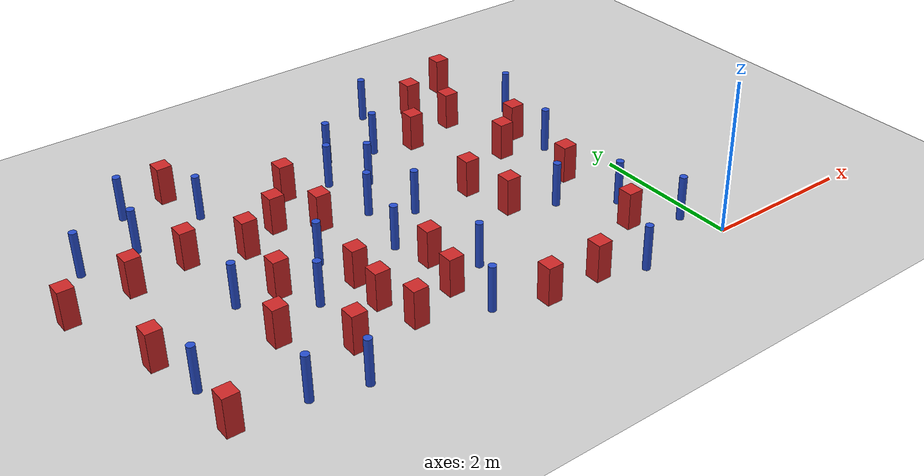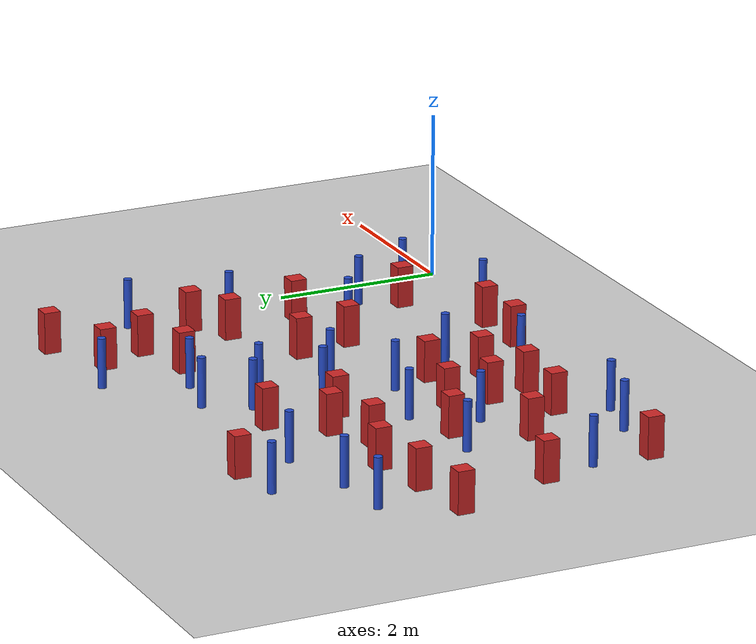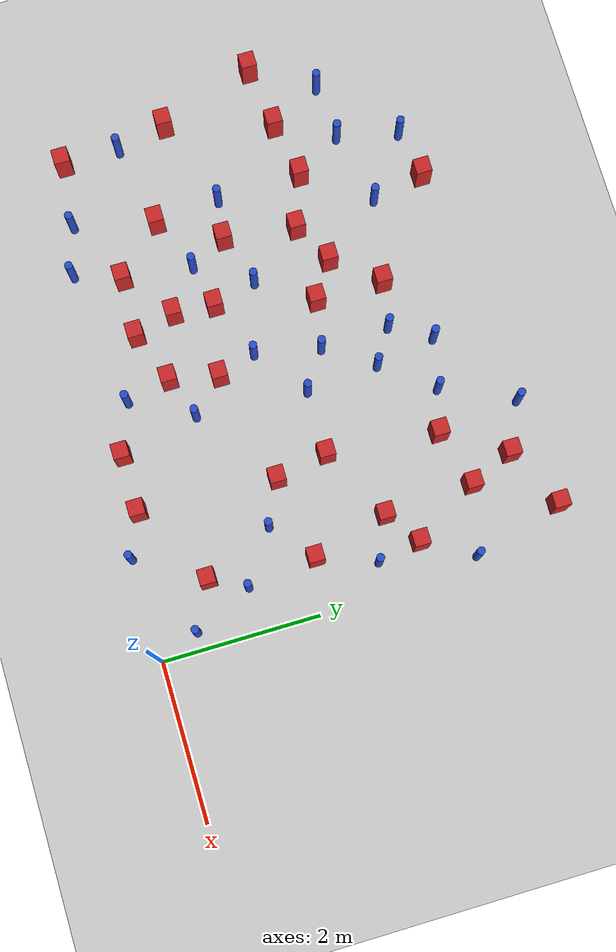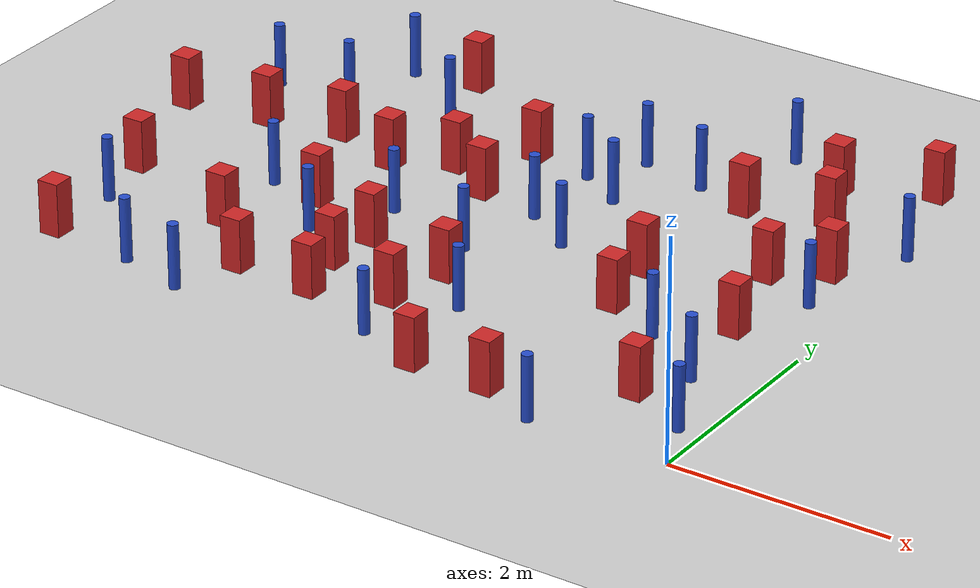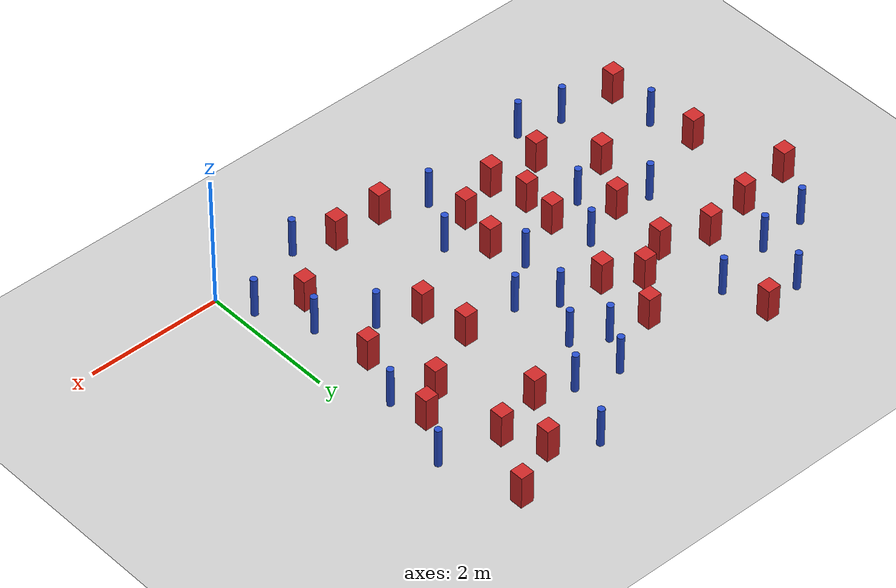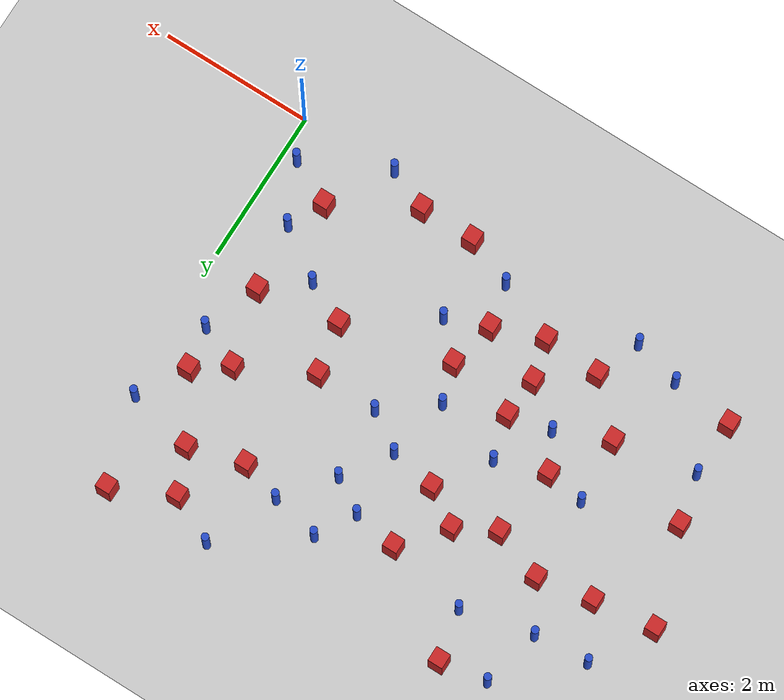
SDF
<sdf version="1.6">
 <world name="default">
  <model name="ground_plane">
   <static>1</static>
   <link name="link">
    <collision name="collision">
     <geometry><plane><normal>0 0 1</normal><size>100 100</size></plane></geometry>
     <surface><friction><ode><mu>100</mu><mu2>50</mu2></ode></friction></surface>
    </collision>
    <visual name="visual">
     <cast_shadows>0</cast_shadows>
     <geometry><plane><normal>0 0 1</normal><size>100 100</size></plane></geometry>
     <material>
      <ambient>1.0 1.0 1.0 1.0</ambient>
      <diffuse>0.8 0.8 0.8 1.0</diffuse>
      <specular>0.01 0.01 0.01 1.000000</specular>
     </material>
    </visual>
   </link>
  </model>
  <model name="NamedLocations">
   <static>true</static>
   <link name="DefaultStart"><pose>8.5 0 0 0 0 3.14</pose></link>
  </model>
  <model name="square_post_obstacle0">
   <static>true</static>
   <pose>-6.99141745238 3.09355268287 1.91545236811e-07 -7.35059704564e-06 1.12565212e-07 2.39332434364e-05</pose>
   <link name="link">
    <pose>0 0 0.25 0 -0 0</pose>
    <inertial>
     <mass>100</mass>
     <inertia>
      <ixx>0.166667</ixx>
      <ixy>0</ixy>
      <ixz>0</ixz>
      <iyy>0.166667</iyy>
      <iyz>0</iyz>
      <izz>0.166667</izz>
     </inertia>
    </inertial>
    <collision name="collision"><geometry><box><size>.2 .2 .5</size></box></geometry></collision>
    <visual name="visual">
     <geometry><box><size>.2 .2 .5</size></box></geometry>
     <material>
      <script><name>Gazebo/Red</name><uri>file://media/materials/scripts/gazebo.material</uri></script>
     </material>
    </visual>
   </link>
  </model>
  <model name="square_post_obstacle4">
   <static>true</static>
   <pose>-3.33328739568 1.01868813255 1.91545236811e-07 -7.35059704564e-06 1.12565212e-07 2.39332434364e-05</pose>
   <link name="link">
    <pose>0 0 0.25 0 -0 0</pose>
    <inertial>
     <mass>100</mass>
     <inertia>
      <ixx>0.166667</ixx>
      <ixy>0</ixy>
      <ixz>0</ixz>
      <iyy>0.166667</iyy>
      <iyz>0</iyz>
      <izz>0.166667</izz>
     </inertia>
    </inertial>
    <collision name="collision"><geometry><box><size>.2 .2 .5</size></box></geometry></collision>
    <visual name="visual">
     <geometry><box><size>.2 .2 .5</size></box></geometry>
     <material>
      <script><name>Gazebo/Red</name><uri>file://media/materials/scripts/gazebo.material</uri></script>
     </material>
    </visual>
   </link>
  </model>
  <model name="pole_obstacle5">
   <static>true</static>
   <pose>-3.1833879127 2.95267589487 7.38925637345e-09 -8.47170692798e-08 1.24976764939e-08 -1.74513093025e-07</pose>
   <link name="link">
    <pose>0 0 0.3 0 -0 0</pose>
    <inertial>
     <mass>1</mass>
     <inertia><ixx>0.145833</ixx><ixy>0</ixy><ixz>0</ixz><iyy>0.145833</iyy><iyz>0</iyz><izz>0.125</izz></inertia>
    </inertial>
    <collision name="collision">
     <geometry><cylinder><radius>0.05</radius><length>.6</length></cylinder></geometry>
    </collision>
    <visual name="visual">
     <geometry><cylinder><radius>0.05</radius><length>.6</length></cylinder></geometry>
     <material>
      <script><name>Gazebo/Blue</name><uri>file://media/materials/scripts/gazebo.material</uri></script>
     </material>
    </visual>
   </link>
  </model>
  <model name="square_post_obstacle7">
   <static>true</static>
   <pose>-4.78033656752 3.09208224334 1.91545236811e-07 -7.35059704564e-06 1.12565212e-07 2.39332434364e-05</pose>
   <link name="link">
    <pose>0 0 0.25 0 -0 0</pose>
    <inertial>
     <mass>100</mass>
     <inertia>
      <ixx>0.166667</ixx>
      <ixy>0</ixy>
      <ixz>0</ixz>
      <iyy>0.166667</iyy>
      <iyz>0</iyz>
      <izz>0.166667</izz>
     </inertia>
    </inertial>
    <collision name="collision"><geometry><box><size>.2 .2 .5</size></box></geometry></collision>
    <visual name="visual">
     <geometry><box><size>.2 .2 .5</size></box></geometry>
     <material>
      <script><name>Gazebo/Red</name><uri>file://media/materials/scripts/gazebo.material</uri></script>
     </material>
    </visual>
   </link>
  </model>
  <model name="pole_obstacle16">
   <static>true</static>
   <pose>-4.65358905452 1.69889573025 7.38925637345e-09 -8.471706928e-08 1.24976765134e-08 -1.74513093015e-07</pose>
   <link name="link">
    <pose>0 0 0.3 0 -0 0</pose>
    <inertial>
     <mass>1</mass>
     <inertia><ixx>0.145833</ixx><ixy>0</ixy><ixz>0</ixz><iyy>0.145833</iyy><iyz>0</iyz><izz>0.125</izz></inertia>
    </inertial>
    <collision name="collision">
     <geometry><cylinder><radius>0.05</radius><length>.6</length></cylinder></geometry>
    </collision>
    <visual name="visual">
     <geometry><cylinder><radius>0.05</radius><length>.6</length></cylinder></geometry>
     <material>
      <script><name>Gazebo/Blue</name><uri>file://media/materials/scripts/gazebo.material</uri></script>
     </material>
    </visual>
   </link>
  </model>
  <model name="square_post_obstacle28">
   <static>true</static>
   <pose>-1.74826577047 4.03709758377 1.91545236811e-07 -7.35059704564e-06 1.12565212e-07 2.39332434364e-05</pose>
   <link name="link">
    <pose>0 0 0.25 0 -0 0</pose>
    <inertial>
     <mass>100</mass>
     <inertia>
      <ixx>0.166667</ixx>
      <ixy>0</ixy>
      <ixz>0</ixz>
      <iyy>0.166667</iyy>
      <iyz>0</iyz>
      <izz>0.166667</izz>
     </inertia>
    </inertial>
    <collision name="collision"><geometry><box><size>.2 .2 .5</size></box></geometry></collision>
    <visual name="visual">
     <geometry><box><size>.2 .2 .5</size></box></geometry>
     <material>
      <script><name>Gazebo/Red</name><uri>file://media/materials/scripts/gazebo.material</uri></script>
     </material>
    </visual>
   </link>
  </model>
  <model name="pole_obstacle22">
   <static>true</static>
   <pose>-4.86930846985 4.15163659928 7.38925637345e-09 -8.47170692796e-08 1.24976764786e-08 -1.74513093032e-07</pose>
   <link name="link">
    <pose>0 0 0.3 0 -0 0</pose>
    <inertial>
     <mass>1</mass>
     <inertia><ixx>0.145833</ixx><ixy>0</ixy><ixz>0</ixz><iyy>0.145833</iyy><iyz>0</iyz><izz>0.125</izz></inertia>
    </inertial>
    <collision name="collision">
     <geometry><cylinder><radius>0.05</radius><length>.6</length></cylinder></geometry>
    </collision>
    <visual name="visual">
     <geometry><cylinder><radius>0.05</radius><length>.6</length></cylinder></geometry>
     <material>
      <script><name>Gazebo/Blue</name><uri>file://media/materials/scripts/gazebo.material</uri></script>
     </material>
    </visual>
   </link>
  </model>
  <model name="pole_obstacle25">
   <static>true</static>
   <pose>-4.24578606172 2.38627765635 7.38925637345e-09 -8.47170692798e-08 1.24976764937e-08 -1.74513093023e-07</pose>
   <link name="link">
    <pose>0 0 0.3 0 -0 0</pose>
    <inertial>
     <mass>1</mass>
     <inertia><ixx>0.145833</ixx><ixy>0</ixy><ixz>0</ixz><iyy>0.145833</iyy><iyz>0</iyz><izz>0.125</izz></inertia>
    </inertial>
    <collision name="collision">
     <geometry><cylinder><radius>0.05</radius><length>.6</length></cylinder></geometry>
    </collision>
    <visual name="visual">
     <geometry><cylinder><radius>0.05</radius><length>.6</length></cylinder></geometry>
     <material>
      <script><name>Gazebo/Blue</name><uri>file://media/materials/scripts/gazebo.material</uri></script>
     </material>
    </visual>
   </link>
  </model>
  <model name="pole_obstacle26">
   <static>true</static>
   <pose>-5.41267201792 2.24431280629 7.38925637345e-09 -8.47170692798e-08 1.24976764937e-08 -1.74513093023e-07</pose>
   <link name="link">
    <pose>0 0 0.3 0 -0 0</pose>
    <inertial>
     <mass>1</mass>
     <inertia><ixx>0.145833</ixx><ixy>0</ixy><ixz>0</ixz><iyy>0.145833</iyy><iyz>0</iyz><izz>0.125</izz></inertia>
    </inertial>
    <collision name="collision">
     <geometry><cylinder><radius>0.05</radius><length>.6</length></cylinder></geometry>
    </collision>
    <visual name="visual">
     <geometry><cylinder><radius>0.05</radius><length>.6</length></cylinder></geometry>
     <material>
      <script><name>Gazebo/Blue</name><uri>file://media/materials/scripts/gazebo.material</uri></script>
     </material>
    </visual>
   </link>
  </model>
  <model name="square_post_obstacle32">
   <static>true</static>
   <pose>-6.42096145597 0.483037753805 1.91545236811e-07 -7.35059704564e-06 1.12565212e-07 2.39332434364e-05</pose>
   <link name="link">
    <pose>0 0 0.25 0 -0 0</pose>
    <inertial>
     <mass>100</mass>
     <inertia>
      <ixx>0.166667</ixx>
      <ixy>0</ixy>
      <ixz>0</ixz>
      <iyy>0.166667</iyy>
      <iyz>0</iyz>
      <izz>0.166667</izz>
     </inertia>
    </inertial>
    <collision name="collision"><geometry><box><size>.2 .2 .5</size></box></geometry></collision>
    <visual name="visual">
     <geometry><box><size>.2 .2 .5</size></box></geometry>
     <material>
      <script><name>Gazebo/Red</name><uri>file://media/materials/scripts/gazebo.material</uri></script>
     </material>
    </visual>
   </link>
  </model>
  <model name="square_post_obstacle34">
   <static>true</static>
   <pose>-4.13096767727 1.30029947722 1.91545236811e-07 -7.35059704564e-06 1.12565212e-07 2.39332434364e-05</pose>
   <link name="link">
    <pose>0 0 0.25 0 -0 0</pose>
    <inertial>
     <mass>100</mass>
     <inertia>
      <ixx>0.166667</ixx>
      <ixy>0</ixy>
      <ixz>0</ixz>
      <iyy>0.166667</iyy>
      <iyz>0</iyz>
      <izz>0.166667</izz>
     </inertia>
    </inertial>
    <collision name="collision"><geometry><box><size>.2 .2 .5</size></box></geometry></collision>
    <visual name="visual">
     <geometry><box><size>.2 .2 .5</size></box></geometry>
     <material>
      <script><name>Gazebo/Red</name><uri>file://media/materials/scripts/gazebo.material</uri></script>
     </material>
    </visual>
   </link>
  </model>
  <model name="pole_obstacle31">
   <static>true</static>
   <pose>-5.59454974575 0.385069663679 7.38925637345e-09 -8.47170692798e-08 1.24976765003e-08 -1.7451309302e-07</pose>
   <link name="link">
    <pose>0 0 0.3 0 -0 0</pose>
    <inertial>
     <mass>1</mass>
     <inertia><ixx>0.145833</ixx><ixy>0</ixy><ixz>0</ixz><iyy>0.145833</iyy><iyz>0</iyz><izz>0.125</izz></inertia>
    </inertial>
    <collision name="collision">
     <geometry><cylinder><radius>0.05</radius><length>.6</length></cylinder></geometry>
    </collision>
    <visual name="visual">
     <geometry><cylinder><radius>0.05</radius><length>.6</length></cylinder></geometry>
     <material>
      <script><name>Gazebo/Blue</name><uri>file://media/materials/scripts/gazebo.material</uri></script>
     </material>
    </visual>
   </link>
  </model>
  <model name="pole_obstacle33">
   <static>true</static>
   <pose>-2.78967994823 1.21708637758 7.38925637345e-09 -8.471706928e-08 1.24976765152e-08 -1.74513093012e-07</pose>
   <link name="link">
    <pose>0 0 0.3 0 -0 0</pose>
    <inertial>
     <mass>1</mass>
     <inertia><ixx>0.145833</ixx><ixy>0</ixy><ixz>0</ixz><iyy>0.145833</iyy><iyz>0</iyz><izz>0.125</izz></inertia>
    </inertial>
    <collision name="collision">
     <geometry><cylinder><radius>0.05</radius><length>.6</length></cylinder></geometry>
    </collision>
    <visual name="visual">
     <geometry><cylinder><radius>0.05</radius><length>.6</length></cylinder></geometry>
     <material>
      <script><name>Gazebo/Blue</name><uri>file://media/materials/scripts/gazebo.material</uri></script>
     </material>
    </visual>
   </link>
  </model>
  <model name="square_post_obstacle38">
   <static>true</static>
   <pose>-3.79637113767 3.06581122965 1.91545236811e-07 -7.35059704564e-06 1.12565212e-07 2.39332434364e-05</pose>
   <link name="link">
    <pose>0 0 0.25 0 -0 0</pose>
    <inertial>
     <mass>100</mass>
     <inertia>
      <ixx>0.166667</ixx>
      <ixy>0</ixy>
      <ixz>0</ixz>
      <iyy>0.166667</iyy>
      <iyz>0</iyz>
      <izz>0.166667</izz>
     </inertia>
    </inertial>
    <collision name="collision"><geometry><box><size>.2 .2 .5</size></box></geometry></collision>
    <visual name="visual">
     <geometry><box><size>.2 .2 .5</size></box></geometry>
     <material>
      <script><name>Gazebo/Red</name><uri>file://media/materials/scripts/gazebo.material</uri></script>
     </material>
    </visual>
   </link>
  </model>
  <model name="square_post_obstacle55">
   <static>true</static>
   <pose>-4.90027215273 2.1683411449 1.91545236811e-07 -7.35059704564e-06 1.12565212e-07 2.39332434364e-05</pose>
   <link name="link">
    <pose>0 0 0.25 0 -0 0</pose>
    <inertial>
     <mass>100</mass>
     <inertia>
      <ixx>0.166667</ixx>
      <ixy>0</ixy>
      <ixz>0</ixz>
      <iyy>0.166667</iyy>
      <iyz>0</iyz>
      <izz>0.166667</izz>
     </inertia>
    </inertial>
    <collision name="collision"><geometry><box><size>.2 .2 .5</size></box></geometry></collision>
    <visual name="visual">
     <geometry><box><size>.2 .2 .5</size></box></geometry>
     <material>
      <script><name>Gazebo/Red</name><uri>file://media/materials/scripts/gazebo.material</uri></script>
     </material>
    </visual>
   </link>
  </model>
  <model name="square_post_obstacle67">
   <static>true</static>
   <pose>-1.88425980929 2.62503272366 1.91545236811e-07 -7.35059704564e-06 1.12565212e-07 2.39332434364e-05</pose>
   <link name="link">
    <pose>0 0 0.25 0 -0 0</pose>
    <inertial>
     <mass>100</mass>
     <inertia>
      <ixx>0.166667</ixx>
      <ixy>0</ixy>
      <ixz>0</ixz>
      <iyy>0.166667</iyy>
      <iyz>0</iyz>
      <izz>0.166667</izz>
     </inertia>
    </inertial>
    <collision name="collision"><geometry><box><size>.2 .2 .5</size></box></geometry></collision>
    <visual name="visual">
     <geometry><box><size>.2 .2 .5</size></box></geometry>
     <material>
      <script><name>Gazebo/Red</name><uri>file://media/materials/scripts/gazebo.material</uri></script>
     </material>
    </visual>
   </link>
  </model>
  <model name="square_post_obstacle68">
   <static>true</static>
   <pose>-0.952996233054 3.10193612465 1.91545236811e-07 -7.35059704564e-06 1.12565212e-07 2.39332434364e-05</pose>
   <link name="link">
    <pose>0 0 0.25 0 -0 0</pose>
    <inertial>
     <mass>100</mass>
     <inertia>
      <ixx>0.166667</ixx>
      <ixy>0</ixy>
      <ixz>0</ixz>
      <iyy>0.166667</iyy>
      <iyz>0</iyz>
      <izz>0.166667</izz>
     </inertia>
    </inertial>
    <collision name="collision"><geometry><box><size>.2 .2 .5</size></box></geometry></collision>
    <visual name="visual">
     <geometry><box><size>.2 .2 .5</size></box></geometry>
     <material>
      <script><name>Gazebo/Red</name><uri>file://media/materials/scripts/gazebo.material</uri></script>
     </material>
    </visual>
   </link>
  </model>
  <model name="pole_obstacle77">
   <static>true</static>
   <pose>-0.147935530165 4.04131726886 7.38925637345e-09 -8.47170692798e-08 1.24976764967e-08 -1.74513093023e-07</pose>
   <link name="link">
    <pose>0 0 0.3 0 -0 0</pose>
    <inertial>
     <mass>1</mass>
     <inertia><ixx>0.145833</ixx><ixy>0</ixy><ixz>0</ixz><iyy>0.145833</iyy><iyz>0</iyz><izz>0.125</izz></inertia>
    </inertial>
    <collision name="collision">
     <geometry><cylinder><radius>0.05</radius><length>.6</length></cylinder></geometry>
    </collision>
    <visual name="visual">
     <geometry><cylinder><radius>0.05</radius><length>.6</length></cylinder></geometry>
     <material>
      <script><name>Gazebo/Blue</name><uri>file://media/materials/scripts/gazebo.material</uri></script>
     </material>
    </visual>
   </link>
  </model>
  <model name="pole_obstacle78">
   <static>true</static>
   <pose>-1.20664871639 1.69870262158 7.38925637345e-09 -8.471706928e-08 1.24976765079e-08 -1.74513093017e-07</pose>
   <link name="link">
    <pose>0 0 0.3 0 -0 0</pose>
    <inertial>
     <mass>1</mass>
     <inertia><ixx>0.145833</ixx><ixy>0</ixy><ixz>0</ixz><iyy>0.145833</iyy><iyz>0</iyz><izz>0.125</izz></inertia>
    </inertial>
    <collision name="collision">
     <geometry><cylinder><radius>0.05</radius><length>.6</length></cylinder></geometry>
    </collision>
    <visual name="visual">
     <geometry><cylinder><radius>0.05</radius><length>.6</length></cylinder></geometry>
     <material>
      <script><name>Gazebo/Blue</name><uri>file://media/materials/scripts/gazebo.material</uri></script>
     </material>
    </visual>
   </link>
  </model>
  <model name="pole_obstacle82">
   <static>true</static>
   <pose>-0.411644437923 2.8651426674 7.38925637345e-09 -8.471706928e-08 1.24976765084e-08 -1.74513093017e-07</pose>
   <link name="link">
    <pose>0 0 0.3 0 -0 0</pose>
    <inertial>
     <mass>1</mass>
     <inertia><ixx>0.145833</ixx><ixy>0</ixy><ixz>0</ixz><iyy>0.145833</iyy><iyz>0</iyz><izz>0.125</izz></inertia>
    </inertial>
    <collision name="collision">
     <geometry><cylinder><radius>0.05</radius><length>.6</length></cylinder></geometry>
    </collision>
    <visual name="visual">
     <geometry><cylinder><radius>0.05</radius><length>.6</length></cylinder></geometry>
     <material>
      <script><name>Gazebo/Blue</name><uri>file://media/materials/scripts/gazebo.material</uri></script>
     </material>
    </visual>
   </link>
  </model>
  <model name="pole_obstacle92">
   <static>true</static>
   <pose>-3.21139211009 3.83288015368 7.38925637345e-09 -8.471706928e-08 1.24976765098e-08 -1.74513093016e-07</pose>
   <link name="link">
    <pose>0 0 0.3 0 -0 0</pose>
    <inertial>
     <mass>1</mass>
     <inertia><ixx>0.145833</ixx><ixy>0</ixy><ixz>0</ixz><iyy>0.145833</iyy><iyz>0</iyz><izz>0.125</izz></inertia>
    </inertial>
    <collision name="collision">
     <geometry><cylinder><radius>0.05</radius><length>.6</length></cylinder></geometry>
    </collision>
    <visual name="visual">
     <geometry><cylinder><radius>0.05</radius><length>.6</length></cylinder></geometry>
     <material>
      <script><name>Gazebo/Blue</name><uri>file://media/materials/scripts/gazebo.material</uri></script>
     </material>
    </visual>
   </link>
  </model>
  <model name="square_post_obstacle85">
   <static>true</static>
   <pose>-5.44886964907 3.32879710891 1.91545236811e-07 -7.35059704564e-06 1.12565212e-07 2.39332434364e-05</pose>
   <link name="link">
    <pose>0 0 0.25 0 -0 0</pose>
    <inertial>
     <mass>100</mass>
     <inertia>
      <ixx>0.166667</ixx>
      <ixy>0</ixy>
      <ixz>0</ixz>
      <iyy>0.166667</iyy>
      <iyz>0</iyz>
      <izz>0.166667</izz>
     </inertia>
    </inertial>
    <collision name="collision"><geometry><box><size>.2 .2 .5</size></box></geometry></collision>
    <visual name="visual">
     <geometry><box><size>.2 .2 .5</size></box></geometry>
     <material>
      <script><name>Gazebo/Red</name><uri>file://media/materials/scripts/gazebo.material</uri></script>
     </material>
    </visual>
   </link>
  </model>
  <model name="square_post_obstacle87">
   <static>true</static>
   <pose>-0.801896197028 0.805733749116 1.91545236811e-07 -7.35059704564e-06 1.12565212e-07 2.39332434364e-05</pose>
   <link name="link">
    <pose>0 0 0.25 0 -0 0</pose>
    <inertial>
     <mass>100</mass>
     <inertia>
      <ixx>0.166667</ixx>
      <ixy>0</ixy>
      <ixz>0</ixz>
      <iyy>0.166667</iyy>
      <iyz>0</iyz>
      <izz>0.166667</izz>
     </inertia>
    </inertial>
    <collision name="collision"><geometry><box><size>.2 .2 .5</size></box></geometry></collision>
    <visual name="visual">
     <geometry><box><size>.2 .2 .5</size></box></geometry>
     <material>
      <script><name>Gazebo/Red</name><uri>file://media/materials/scripts/gazebo.material</uri></script>
     </material>
    </visual>
   </link>
  </model>
  <model name="square_post_obstacle88">
   <static>true</static>
   <pose>-1.01664227869 4.23749432111 1.91545236811e-07 -7.35059704564e-06 1.12565212e-07 2.39332434364e-05</pose>
   <link name="link">
    <pose>0 0 0.25 0 -0 0</pose>
    <inertial>
     <mass>100</mass>
     <inertia>
      <ixx>0.166667</ixx>
      <ixy>0</ixy>
      <ixz>0</ixz>
      <iyy>0.166667</iyy>
      <iyz>0</iyz>
      <izz>0.166667</izz>
     </inertia>
    </inertial>
    <collision name="collision"><geometry><box><size>.2 .2 .5</size></box></geometry></collision>
    <visual name="visual">
     <geometry><box><size>.2 .2 .5</size></box></geometry>
     <material>
      <script><name>Gazebo/Red</name><uri>file://media/materials/scripts/gazebo.material</uri></script>
     </material>
    </visual>
   </link>
  </model>
  <model name="pole_obstacle102">
   <static>true</static>
   <pose>-4.96656062448 0.220497953331 7.38925637345e-09 -8.471706928e-08 1.24976765136e-08 -1.74513093014e-07</pose>
   <link name="link">
    <pose>0 0 0.3 0 -0 0</pose>
    <inertial>
     <mass>1</mass>
     <inertia><ixx>0.145833</ixx><ixy>0</ixy><ixz>0</ixz><iyy>0.145833</iyy><iyz>0</iyz><izz>0.125</izz></inertia>
    </inertial>
    <collision name="collision">
     <geometry><cylinder><radius>0.05</radius><length>.6</length></cylinder></geometry>
    </collision>
    <visual name="visual">
     <geometry><cylinder><radius>0.05</radius><length>.6</length></cylinder></geometry>
     <material>
      <script><name>Gazebo/Blue</name><uri>file://media/materials/scripts/gazebo.material</uri></script>
     </material>
    </visual>
   </link>
  </model>
  <model name="square_post_obstacle97">
   <static>true</static>
   <pose>-0.689328795046 2.13533162996 1.91545236811e-07 -7.35059704564e-06 1.12565212e-07 2.39332434364e-05</pose>
   <link name="link">
    <pose>0 0 0.25 0 -0 0</pose>
    <inertial>
     <mass>100</mass>
     <inertia>
      <ixx>0.166667</ixx>
      <ixy>0</ixy>
      <ixz>0</ixz>
      <iyy>0.166667</iyy>
      <iyz>0</iyz>
      <izz>0.166667</izz>
     </inertia>
    </inertial>
    <collision name="collision"><geometry><box><size>.2 .2 .5</size></box></geometry></collision>
    <visual name="visual">
     <geometry><box><size>.2 .2 .5</size></box></geometry>
     <material>
      <script><name>Gazebo/Red</name><uri>file://media/materials/scripts/gazebo.material</uri></script>
     </material>
    </visual>
   </link>
  </model>
  <model name="square_post_obstacle103">
   <static>true</static>
   <pose>-3.19939535483 1.63339988353 1.91545236811e-07 -7.35059704564e-06 1.12565212e-07 2.39332434364e-05</pose>
   <link name="link">
    <pose>0 0 0.25 0 -0 0</pose>
    <inertial>
     <mass>100</mass>
     <inertia>
      <ixx>0.166667</ixx>
      <ixy>0</ixy>
      <ixz>0</ixz>
      <iyy>0.166667</iyy>
      <iyz>0</iyz>
      <izz>0.166667</izz>
     </inertia>
    </inertial>
    <collision name="collision"><geometry><box><size>.2 .2 .5</size></box></geometry></collision>
    <visual name="visual">
     <geometry><box><size>.2 .2 .5</size></box></geometry>
     <material>
      <script><name>Gazebo/Red</name><uri>file://media/materials/scripts/gazebo.material</uri></script>
     </material>
    </visual>
   </link>
  </model>
  <model name="square_post_obstacle104">
   <static>true</static>
   <pose>-2.57127642694 0.213779912656 1.91545236811e-07 -7.35059704564e-06 1.12565212e-07 2.39332434364e-05</pose>
   <link name="link">
    <pose>0 0 0.25 0 -0 0</pose>
    <inertial>
     <mass>100</mass>
     <inertia>
      <ixx>0.166667</ixx>
      <ixy>0</ixy>
      <ixz>0</ixz>
      <iyy>0.166667</iyy>
      <iyz>0</iyz>
      <izz>0.166667</izz>
     </inertia>
    </inertial>
    <collision name="collision"><geometry><box><size>.2 .2 .5</size></box></geometry></collision>
    <visual name="visual">
     <geometry><box><size>.2 .2 .5</size></box></geometry>
     <material>
      <script><name>Gazebo/Red</name><uri>file://media/materials/scripts/gazebo.material</uri></script>
     </material>
    </visual>
   </link>
  </model>
  <model name="pole_obstacle123">
   <static>true</static>
   <pose>-2.28050423341 4.19630344712 7.38925637345e-09 -8.47170692798e-08 1.24976765033e-08 -1.74513093019e-07</pose>
   <link name="link">
    <pose>0 0 0.3 0 -0 0</pose>
    <inertial>
     <mass>1</mass>
     <inertia><ixx>0.145833</ixx><ixy>0</ixy><ixz>0</ixz><iyy>0.145833</iyy><iyz>0</iyz><izz>0.125</izz></inertia>
    </inertial>
    <collision name="collision">
     <geometry><cylinder><radius>0.05</radius><length>.6</length></cylinder></geometry>
    </collision>
    <visual name="visual">
     <geometry><cylinder><radius>0.05</radius><length>.6</length></cylinder></geometry>
     <material>
      <script><name>Gazebo/Blue</name><uri>file://media/materials/scripts/gazebo.material</uri></script>
     </material>
    </visual>
   </link>
  </model>
  <model name="pole_obstacle128">
   <static>true</static>
   <pose>-1.29643118779 -0.0179742337303 7.38925637345e-09 -8.47170692799e-08 1.24976765012e-08 -1.7451309302e-07</pose>
   <link name="link">
    <pose>0 0 0.3 0 -0 0</pose>
    <inertial>
     <mass>1</mass>
     <inertia><ixx>0.145833</ixx><ixy>0</ixy><ixz>0</ixz><iyy>0.145833</iyy><iyz>0</iyz><izz>0.125</izz></inertia>
    </inertial>
    <collision name="collision">
     <geometry><cylinder><radius>0.05</radius><length>.6</length></cylinder></geometry>
    </collision>
    <visual name="visual">
     <geometry><cylinder><radius>0.05</radius><length>.6</length></cylinder></geometry>
     <material>
      <script><name>Gazebo/Blue</name><uri>file://media/materials/scripts/gazebo.material</uri></script>
     </material>
    </visual>
   </link>
  </model>
  <model name="pole_obstacle134">
   <static>true</static>
   <pose>-2.91660211757 4.33340824622 7.38925637345e-09 -8.47170692798e-08 1.24976765033e-08 -1.74513093019e-07</pose>
   <link name="link">
    <pose>0 0 0.3 0 -0 0</pose>
    <inertial>
     <mass>1</mass>
     <inertia><ixx>0.145833</ixx><ixy>0</ixy><ixz>0</ixz><iyy>0.145833</iyy><iyz>0</iyz><izz>0.125</izz></inertia>
    </inertial>
    <collision name="collision">
     <geometry><cylinder><radius>0.05</radius><length>.6</length></cylinder></geometry>
    </collision>
    <visual name="visual">
     <geometry><cylinder><radius>0.05</radius><length>.6</length></cylinder></geometry>
     <material>
      <script><name>Gazebo/Blue</name><uri>file://media/materials/scripts/gazebo.material</uri></script>
     </material>
    </visual>
   </link>
  </model>
  <model name="square_post_obstacle126">
   <static>true</static>
   <pose>-0.488632609918 5.1756541912 1.91545236811e-07 -7.35059704564e-06 1.12565212e-07 2.39332434364e-05</pose>
   <link name="link">
    <pose>0 0 0.25 0 -0 0</pose>
    <inertial>
     <mass>100</mass>
     <inertia>
      <ixx>0.166667</ixx>
      <ixy>0</ixy>
      <ixz>0</ixz>
      <iyy>0.166667</iyy>
      <iyz>0</iyz>
      <izz>0.166667</izz>
     </inertia>
    </inertial>
    <collision name="collision"><geometry><box><size>.2 .2 .5</size></box></geometry></collision>
    <visual name="visual">
     <geometry><box><size>.2 .2 .5</size></box></geometry>
     <material>
      <script><name>Gazebo/Red</name><uri>file://media/materials/scripts/gazebo.material</uri></script>
     </material>
    </visual>
   </link>
  </model>
  <model name="square_post_obstacle136">
   <static>true</static>
   <pose>-0.520062537634 3.4118179392 1.91545236811e-07 -7.35059704564e-06 1.12565212e-07 2.39332434364e-05</pose>
   <link name="link">
    <pose>0 0 0.25 0 -0 0</pose>
    <inertial>
     <mass>100</mass>
     <inertia>
      <ixx>0.166667</ixx>
      <ixy>0</ixy>
      <ixz>0</ixz>
      <iyy>0.166667</iyy>
      <iyz>0</iyz>
      <izz>0.166667</izz>
     </inertia>
    </inertial>
    <collision name="collision"><geometry><box><size>.2 .2 .5</size></box></geometry></collision>
    <visual name="visual">
     <geometry><box><size>.2 .2 .5</size></box></geometry>
     <material>
      <script><name>Gazebo/Red</name><uri>file://media/materials/scripts/gazebo.material</uri></script>
     </material>
    </visual>
   </link>
  </model>
  <model name="pole_obstacle146">
   <static>true</static>
   <pose>-0.564568433719 1.25692932811 7.38925637345e-09 -8.47170692799e-08 1.24976765033e-08 -1.7451309302e-07</pose>
   <link name="link">
    <pose>0 0 0.3 0 -0 0</pose>
    <inertial>
     <mass>1</mass>
     <inertia><ixx>0.145833</ixx><ixy>0</ixy><ixz>0</ixz><iyy>0.145833</iyy><iyz>0</iyz><izz>0.125</izz></inertia>
    </inertial>
    <collision name="collision">
     <geometry><cylinder><radius>0.05</radius><length>.6</length></cylinder></geometry>
    </collision>
    <visual name="visual">
     <geometry><cylinder><radius>0.05</radius><length>.6</length></cylinder></geometry>
     <material>
      <script><name>Gazebo/Blue</name><uri>file://media/materials/scripts/gazebo.material</uri></script>
     </material>
    </visual>
   </link>
  </model>
  <model name="square_post_obstacle144">
   <static>true</static>
   <pose>-3.98907001419 0.775500426274 1.91545236811e-07 -7.35059704564e-06 1.12565212e-07 2.39332434364e-05</pose>
   <link name="link">
    <pose>0 0 0.25 0 -0 0</pose>
    <inertial>
     <mass>100</mass>
     <inertia>
      <ixx>0.166667</ixx>
      <ixy>0</ixy>
      <ixz>0</ixz>
      <iyy>0.166667</iyy>
      <iyz>0</iyz>
      <izz>0.166667</izz>
     </inertia>
    </inertial>
    <collision name="collision"><geometry><box><size>.2 .2 .5</size></box></geometry></collision>
    <visual name="visual">
     <geometry><box><size>.2 .2 .5</size></box></geometry>
     <material>
      <script><name>Gazebo/Red</name><uri>file://media/materials/scripts/gazebo.material</uri></script>
     </material>
    </visual>
   </link>
  </model>
  <model name="square_post_obstacle149">
   <static>true</static>
   <pose>-1.84069941172 0.212463611327 1.91545236811e-07 -7.35059704564e-06 1.12565212e-07 2.39332434364e-05</pose>
   <link name="link">
    <pose>0 0 0.25 0 -0 0</pose>
    <inertial>
     <mass>100</mass>
     <inertia>
      <ixx>0.166667</ixx>
      <ixy>0</ixy>
      <ixz>0</ixz>
      <iyy>0.166667</iyy>
      <iyz>0</iyz>
      <izz>0.166667</izz>
     </inertia>
    </inertial>
    <collision name="collision"><geometry><box><size>.2 .2 .5</size></box></geometry></collision>
    <visual name="visual">
     <geometry><box><size>.2 .2 .5</size></box></geometry>
     <material>
      <script><name>Gazebo/Red</name><uri>file://media/materials/scripts/gazebo.material</uri></script>
     </material>
    </visual>
   </link>
  </model>
  <model name="pole_obstacle160">
   <static>true</static>
   <pose>-3.35244841908 2.12599802508 7.38925637345e-09 -8.471706928e-08 1.24976765098e-08 -1.74513093016e-07</pose>
   <link name="link">
    <pose>0 0 0.3 0 -0 0</pose>
    <inertial>
     <mass>1</mass>
     <inertia><ixx>0.145833</ixx><ixy>0</ixy><ixz>0</ixz><iyy>0.145833</iyy><iyz>0</iyz><izz>0.125</izz></inertia>
    </inertial>
    <collision name="collision">
     <geometry><cylinder><radius>0.05</radius><length>.6</length></cylinder></geometry>
    </collision>
    <visual name="visual">
     <geometry><cylinder><radius>0.05</radius><length>.6</length></cylinder></geometry>
     <material>
      <script><name>Gazebo/Blue</name><uri>file://media/materials/scripts/gazebo.material</uri></script>
     </material>
    </visual>
   </link>
  </model>
  <model name="pole_obstacle165">
   <static>true</static>
   <pose>-2.77686336076 3.56164503769 7.38925637345e-09 -8.47170692798e-08 1.24976764939e-08 -1.74513093025e-07</pose>
   <link name="link">
    <pose>0 0 0.3 0 -0 0</pose>
    <inertial>
     <mass>1</mass>
     <inertia><ixx>0.145833</ixx><ixy>0</ixy><ixz>0</ixz><iyy>0.145833</iyy><iyz>0</iyz><izz>0.125</izz></inertia>
    </inertial>
    <collision name="collision">
     <geometry><cylinder><radius>0.05</radius><length>.6</length></cylinder></geometry>
    </collision>
    <visual name="visual">
     <geometry><cylinder><radius>0.05</radius><length>.6</length></cylinder></geometry>
     <material>
      <script><name>Gazebo/Blue</name><uri>file://media/materials/scripts/gazebo.material</uri></script>
     </material>
    </visual>
   </link>
  </model>
  <model name="square_post_obstacle158">
   <static>true</static>
   <pose>-1.75335970436 1.95906993846 1.91545236811e-07 -7.35059704564e-06 1.12565212e-07 2.39332434364e-05</pose>
   <link name="link">
    <pose>0 0 0.25 0 -0 0</pose>
    <inertial>
     <mass>100</mass>
     <inertia>
      <ixx>0.166667</ixx>
      <ixy>0</ixy>
      <ixz>0</ixz>
      <iyy>0.166667</iyy>
      <iyz>0</iyz>
      <izz>0.166667</izz>
     </inertia>
    </inertial>
    <collision name="collision"><geometry><box><size>.2 .2 .5</size></box></geometry></collision>
    <visual name="visual">
     <geometry><box><size>.2 .2 .5</size></box></geometry>
     <material>
      <script><name>Gazebo/Red</name><uri>file://media/materials/scripts/gazebo.material</uri></script>
     </material>
    </visual>
   </link>
  </model>
  <model name="square_post_obstacle159">
   <static>true</static>
   <pose>-4.09238113873 1.82254100296 1.91545236811e-07 -7.35059704564e-06 1.12565212e-07 2.39332434364e-05</pose>
   <link name="link">
    <pose>0 0 0.25 0 -0 0</pose>
    <inertial>
     <mass>100</mass>
     <inertia>
      <ixx>0.166667</ixx>
      <ixy>0</ixy>
      <ixz>0</ixz>
      <iyy>0.166667</iyy>
      <iyz>0</iyz>
      <izz>0.166667</izz>
     </inertia>
    </inertial>
    <collision name="collision"><geometry><box><size>.2 .2 .5</size></box></geometry></collision>
    <visual name="visual">
     <geometry><box><size>.2 .2 .5</size></box></geometry>
     <material>
      <script><name>Gazebo/Red</name><uri>file://media/materials/scripts/gazebo.material</uri></script>
     </material>
    </visual>
   </link>
  </model>
  <model name="square_post_obstacle162">
   <static>true</static>
   <pose>-6.17760301917 3.19949653239 1.91545236811e-07 -7.35059704564e-06 1.12565212e-07 2.39332434364e-05</pose>
   <link name="link">
    <pose>0 0 0.25 0 -0 0</pose>
    <inertial>
     <mass>100</mass>
     <inertia>
      <ixx>0.166667</ixx>
      <ixy>0</ixy>
      <ixz>0</ixz>
      <iyy>0.166667</iyy>
      <iyz>0</iyz>
      <izz>0.166667</izz>
     </inertia>
    </inertial>
    <collision name="collision"><geometry><box><size>.2 .2 .5</size></box></geometry></collision>
    <visual name="visual">
     <geometry><box><size>.2 .2 .5</size></box></geometry>
     <material>
      <script><name>Gazebo/Red</name><uri>file://media/materials/scripts/gazebo.material</uri></script>
     </material>
    </visual>
   </link>
  </model>
  <model name="square_post_obstacle164">
   <static>true</static>
   <pose>-3.79810832725 3.93082805195 1.91545236811e-07 -7.35059704564e-06 1.12565212e-07 2.39332434364e-05</pose>
   <link name="link">
    <pose>0 0 0.25 0 -0 0</pose>
    <inertial>
     <mass>100</mass>
     <inertia>
      <ixx>0.166667</ixx>
      <ixy>0</ixy>
      <ixz>0</ixz>
      <iyy>0.166667</iyy>
      <iyz>0</iyz>
      <izz>0.166667</izz>
     </inertia>
    </inertial>
    <collision name="collision"><geometry><box><size>.2 .2 .5</size></box></geometry></collision>
    <visual name="visual">
     <geometry><box><size>.2 .2 .5</size></box></geometry>
     <material>
      <script><name>Gazebo/Red</name><uri>file://media/materials/scripts/gazebo.material</uri></script>
     </material>
    </visual>
   </link>
  </model>
  <model name="pole_obstacle179">
   <static>true</static>
   <pose>-2.70264331572 2.63386465259 7.38925637345e-09 -8.47170692798e-08 1.24976764939e-08 -1.74513093025e-07</pose>
   <link name="link">
    <pose>0 0 0.3 0 -0 0</pose>
    <inertial>
     <mass>1</mass>
     <inertia><ixx>0.145833</ixx><ixy>0</ixy><ixz>0</ixz><iyy>0.145833</iyy><iyz>0</iyz><izz>0.125</izz></inertia>
    </inertial>
    <collision name="collision">
     <geometry><cylinder><radius>0.05</radius><length>.6</length></cylinder></geometry>
    </collision>
    <visual name="visual">
     <geometry><cylinder><radius>0.05</radius><length>.6</length></cylinder></geometry>
     <material>
      <script><name>Gazebo/Blue</name><uri>file://media/materials/scripts/gazebo.material</uri></script>
     </material>
    </visual>
   </link>
  </model>
  <model name="pole_obstacle181">
   <static>true</static>
   <pose>-5.80932903963 3.93272384861 7.38925637345e-09 -8.47170692798e-08 1.24976764937e-08 -1.74513093023e-07</pose>
   <link name="link">
    <pose>0 0 0.3 0 -0 0</pose>
    <inertial>
     <mass>1</mass>
     <inertia><ixx>0.145833</ixx><ixy>0</ixy><ixz>0</ixz><iyy>0.145833</iyy><iyz>0</iyz><izz>0.125</izz></inertia>
    </inertial>
    <collision name="collision">
     <geometry><cylinder><radius>0.05</radius><length>.6</length></cylinder></geometry>
    </collision>
    <visual name="visual">
     <geometry><cylinder><radius>0.05</radius><length>.6</length></cylinder></geometry>
     <material>
      <script><name>Gazebo/Blue</name><uri>file://media/materials/scripts/gazebo.material</uri></script>
     </material>
    </visual>
   </link>
  </model>
  <model name="square_post_obstacle170">
   <static>true</static>
   <pose>-6.56771495064 1.84982096919 1.91545236811e-07 -7.35059704564e-06 1.12565212e-07 2.39332434364e-05</pose>
   <link name="link">
    <pose>0 0 0.25 0 -0 0</pose>
    <inertial>
     <mass>100</mass>
     <inertia>
      <ixx>0.166667</ixx>
      <ixy>0</ixy>
      <ixz>0</ixz>
      <iyy>0.166667</iyy>
      <iyz>0</iyz>
      <izz>0.166667</izz>
     </inertia>
    </inertial>
    <collision name="collision"><geometry><box><size>.2 .2 .5</size></box></geometry></collision>
    <visual name="visual">
     <geometry><box><size>.2 .2 .5</size></box></geometry>
     <material>
      <script><name>Gazebo/Red</name><uri>file://media/materials/scripts/gazebo.material</uri></script>
     </material>
    </visual>
   </link>
  </model>
  <model name="pole_obstacle183">
   <static>true</static>
   <pose>-6.53035610365 3.87422516281 7.38925637345e-09 -8.47170692798e-08 1.24976764937e-08 -1.74513093023e-07</pose>
   <link name="link">
    <pose>0 0 0.3 0 -0 0</pose>
    <inertial>
     <mass>1</mass>
     <inertia><ixx>0.145833</ixx><ixy>0</ixy><ixz>0</ixz><iyy>0.145833</iyy><iyz>0</iyz><izz>0.125</izz></inertia>
    </inertial>
    <collision name="collision">
     <geometry><cylinder><radius>0.05</radius><length>.6</length></cylinder></geometry>
    </collision>
    <visual name="visual">
     <geometry><cylinder><radius>0.05</radius><length>.6</length></cylinder></geometry>
     <material>
      <script><name>Gazebo/Blue</name><uri>file://media/materials/scripts/gazebo.material</uri></script>
     </material>
    </visual>
   </link>
  </model>
  <model name="square_post_obstacle174">
   <static>true</static>
   <pose>-4.74846140075 0.811257214436 1.91545236811e-07 -7.35059704564e-06 1.12565212e-07 2.39332434364e-05</pose>
   <link name="link">
    <pose>0 0 0.25 0 -0 0</pose>
    <inertial>
     <mass>100</mass>
     <inertia>
      <ixx>0.166667</ixx>
      <ixy>0</ixy>
      <ixz>0</ixz>
      <iyy>0.166667</iyy>
      <iyz>0</iyz>
      <izz>0.166667</izz>
     </inertia>
    </inertial>
    <collision name="collision"><geometry><box><size>.2 .2 .5</size></box></geometry></collision>
    <visual name="visual">
     <geometry><box><size>.2 .2 .5</size></box></geometry>
     <material>
      <script><name>Gazebo/Red</name><uri>file://media/materials/scripts/gazebo.material</uri></script>
     </material>
    </visual>
   </link>
  </model>
  <model name="square_post_obstacle182">
   <static>true</static>
   <pose>-5.01309802926 4.81830927677 1.91545236811e-07 -7.35059704564e-06 1.12565212e-07 2.39332434364e-05</pose>
   <link name="link">
    <pose>0 0 0.25 0 -0 0</pose>
    <inertial>
     <mass>100</mass>
     <inertia>
      <ixx>0.166667</ixx>
      <ixy>0</ixy>
      <ixz>0</ixz>
      <iyy>0.166667</iyy>
      <iyz>0</iyz>
      <izz>0.166667</izz>
     </inertia>
    </inertial>
    <collision name="collision"><geometry><box><size>.2 .2 .5</size></box></geometry></collision>
    <visual name="visual">
     <geometry><box><size>.2 .2 .5</size></box></geometry>
     <material>
      <script><name>Gazebo/Red</name><uri>file://media/materials/scripts/gazebo.material</uri></script>
     </material>
    </visual>
   </link>
  </model>
  <model name="square_post_obstacle186">
   <static>true</static>
   <pose>-4.26246317002 3.3628929261 1.91545236811e-07 -7.35059704564e-06 1.12565212e-07 2.39332434364e-05</pose>
   <link name="link">
    <pose>0 0 0.25 0 -0 0</pose>
    <inertial>
     <mass>100</mass>
     <inertia>
      <ixx>0.166667</ixx>
      <ixy>0</ixy>
      <ixz>0</ixz>
      <iyy>0.166667</iyy>
      <iyz>0</iyz>
      <izz>0.166667</izz>
     </inertia>
    </inertial>
    <collision name="collision"><geometry><box><size>.2 .2 .5</size></box></geometry></collision>
    <visual name="visual">
     <geometry><box><size>.2 .2 .5</size></box></geometry>
     <material>
      <script><name>Gazebo/Red</name><uri>file://media/materials/scripts/gazebo.material</uri></script>
     </material>
    </visual>
   </link>
  </model>
  <model name="pole_obstacle193">
   <static>true</static>
   <pose>-3.20202816563 0.449967571694 7.38925637345e-09 -8.47170692796e-08 1.249767648e-08 -1.74513093032e-07</pose>
   <link name="link">
    <pose>0 0 0.3 0 -0 0</pose>
    <inertial>
     <mass>1</mass>
     <inertia><ixx>0.145833</ixx><ixy>0</ixy><ixz>0</ixz><iyy>0.145833</iyy><iyz>0</iyz><izz>0.125</izz></inertia>
    </inertial>
    <collision name="collision">
     <geometry><cylinder><radius>0.05</radius><length>.6</length></cylinder></geometry>
    </collision>
    <visual name="visual">
     <geometry><cylinder><radius>0.05</radius><length>.6</length></cylinder></geometry>
     <material>
      <script><name>Gazebo/Blue</name><uri>file://media/materials/scripts/gazebo.material</uri></script>
     </material>
    </visual>
   </link>
  </model>
  <model name="pole_obstacle196">
   <static>true</static>
   <pose>-0.216526075808 0.509392334705 7.38925637345e-09 -8.47170692799e-08 1.24976765009e-08 -1.74513093019e-07</pose>
   <link name="link">
    <pose>0 0 0.3 0 -0 0</pose>
    <inertial>
     <mass>1</mass>
     <inertia><ixx>0.145833</ixx><ixy>0</ixy><ixz>0</ixz><iyy>0.145833</iyy><iyz>0</iyz><izz>0.125</izz></inertia>
    </inertial>
    <collision name="collision">
     <geometry><cylinder><radius>0.05</radius><length>.6</length></cylinder></geometry>
    </collision>
    <visual name="visual">
     <geometry><cylinder><radius>0.05</radius><length>.6</length></cylinder></geometry>
     <material>
      <script><name>Gazebo/Blue</name><uri>file://media/materials/scripts/gazebo.material</uri></script>
     </material>
    </visual>
   </link>
  </model>
  <model name="pole_obstacle198">
   <static>true</static>
   <pose>-5.63309905836 4.71483278714 7.38925637345e-09 -8.47170692796e-08 1.24976764786e-08 -1.74513093032e-07</pose>
   <link name="link">
    <pose>0 0 0.3 0 -0 0</pose>
    <inertial>
     <mass>1</mass>
     <inertia><ixx>0.145833</ixx><ixy>0</ixy><ixz>0</ixz><iyy>0.145833</iyy><iyz>0</iyz><izz>0.125</izz></inertia>
    </inertial>
    <collision name="collision">
     <geometry><cylinder><radius>0.05</radius><length>.6</length></cylinder></geometry>
    </collision>
    <visual name="visual">
     <geometry><cylinder><radius>0.05</radius><length>.6</length></cylinder></geometry>
     <material>
      <script><name>Gazebo/Blue</name><uri>file://media/materials/scripts/gazebo.material</uri></script>
     </material>
    </visual>
   </link>
  </model>
  <model name="square_post_obstacle192">
   <static>true</static>
   <pose>-5.34587484212 1.41015119231 1.91545236811e-07 -7.35059704564e-06 1.12565212e-07 2.39332434364e-05</pose>
   <link name="link">
    <pose>0 0 0.25 0 -0 0</pose>
    <inertial>
     <mass>100</mass>
     <inertia>
      <ixx>0.166667</ixx>
      <ixy>0</ixy>
      <ixz>0</ixz>
      <iyy>0.166667</iyy>
      <iyz>0</iyz>
      <izz>0.166667</izz>
     </inertia>
    </inertial>
    <collision name="collision"><geometry><box><size>.2 .2 .5</size></box></geometry></collision>
    <visual name="visual">
     <geometry><box><size>.2 .2 .5</size></box></geometry>
     <material>
      <script><name>Gazebo/Red</name><uri>file://media/materials/scripts/gazebo.material</uri></script>
     </material>
    </visual>
   </link>
  </model>
  <model name="pole_obstacle202">
   <static>true</static>
   <pose>-1.86246152275 5.10236849858 7.38925637345e-09 -8.47170692799e-08 1.24976765033e-08 -1.74513093018e-07</pose>
   <link name="link">
    <pose>0 0 0.3 0 -0 0</pose>
    <inertial>
     <mass>1</mass>
     <inertia><ixx>0.145833</ixx><ixy>0</ixy><ixz>0</ixz><iyy>0.145833</iyy><iyz>0</iyz><izz>0.125</izz></inertia>
    </inertial>
    <collision name="collision">
     <geometry><cylinder><radius>0.05</radius><length>.6</length></cylinder></geometry>
    </collision>
    <visual name="visual">
     <geometry><cylinder><radius>0.05</radius><length>.6</length></cylinder></geometry>
     <material>
      <script><name>Gazebo/Blue</name><uri>file://media/materials/scripts/gazebo.material</uri></script>
     </material>
    </visual>
   </link>
  </model>
  <model name="pole_obstacle211">
   <static>true</static>
   <pose>-6.41636341301 1.20705515599 7.38925637345e-09 -8.471706928e-08 1.24976765134e-08 -1.74513093015e-07</pose>
   <link name="link">
    <pose>0 0 0.3 0 -0 0</pose>
    <inertial>
     <mass>1</mass>
     <inertia><ixx>0.145833</ixx><ixy>0</ixy><ixz>0</ixz><iyy>0.145833</iyy><iyz>0</iyz><izz>0.125</izz></inertia>
    </inertial>
    <collision name="collision">
     <geometry><cylinder><radius>0.05</radius><length>.6</length></cylinder></geometry>
    </collision>
    <visual name="visual">
     <geometry><cylinder><radius>0.05</radius><length>.6</length></cylinder></geometry>
     <material>
      <script><name>Gazebo/Blue</name><uri>file://media/materials/scripts/gazebo.material</uri></script>
     </material>
    </visual>
   </link>
  </model>
  <model name="square_post_obstacle212">
   <static>true</static>
   <pose>-1.26130280903 4.80389524216 1.91545236811e-07 -7.35059704564e-06 1.12565212e-07 2.39332434364e-05</pose>
   <link name="link">
    <pose>0 0 0.25 0 -0 0</pose>
    <inertial>
     <mass>100</mass>
     <inertia>
      <ixx>0.166667</ixx>
      <ixy>0</ixy>
      <ixz>0</ixz>
      <iyy>0.166667</iyy>
      <iyz>0</iyz>
      <izz>0.166667</izz>
     </inertia>
    </inertial>
    <collision name="collision"><geometry><box><size>.2 .2 .5</size></box></geometry></collision>
    <visual name="visual">
     <geometry><box><size>.2 .2 .5</size></box></geometry>
     <material>
      <script><name>Gazebo/Red</name><uri>file://media/materials/scripts/gazebo.material</uri></script>
     </material>
    </visual>
   </link>
  </model>
 </world>
</sdf>
